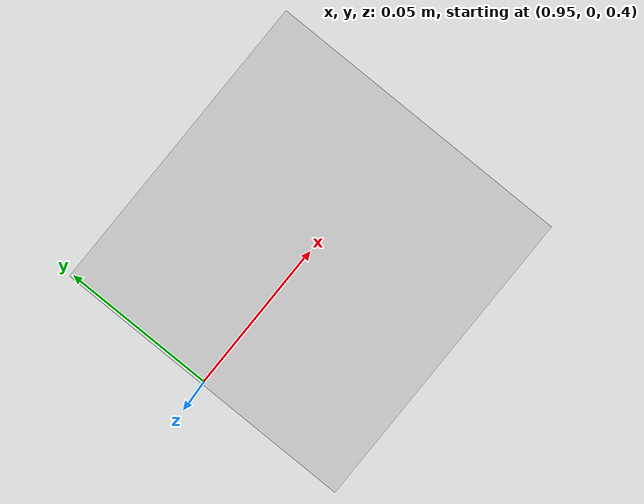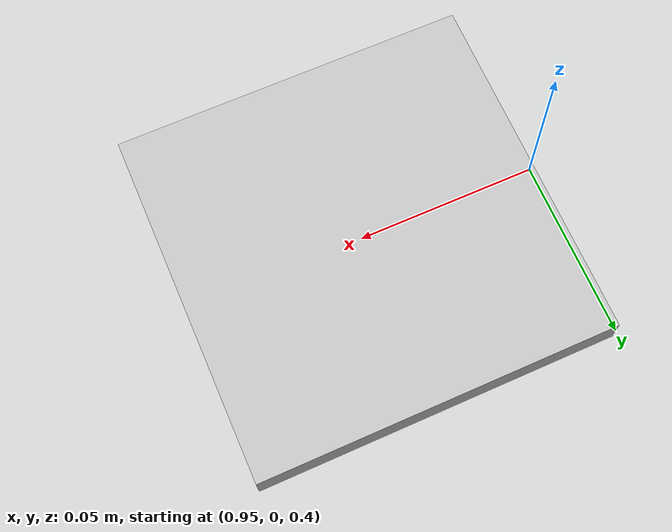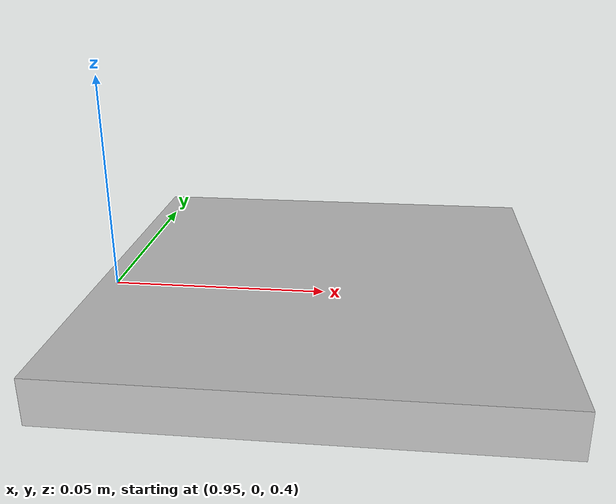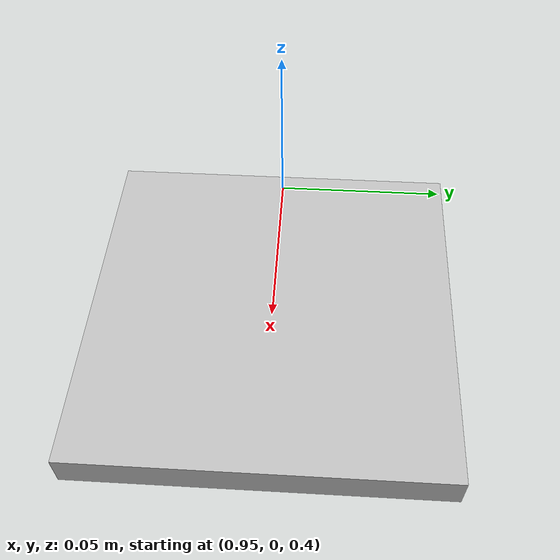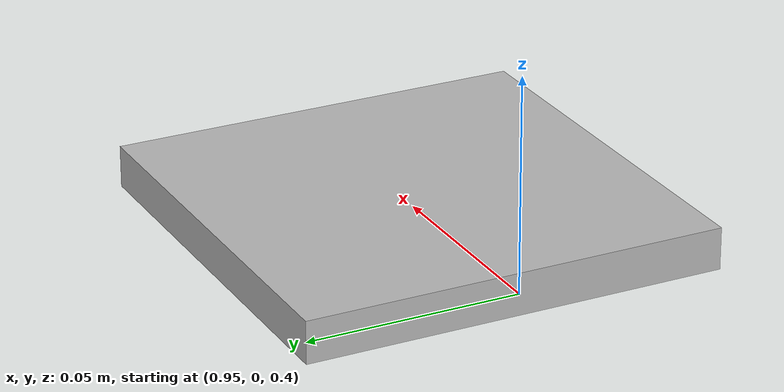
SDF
<sdf version="1.7">
 <world name="default">
  <physics type="ode">
   <ode>
    <solver>
     <type>quick</type>
     <iters>20</iters>
     <sor>1</sor>
     <use_dynamic_moi_rescaling>0</use_dynamic_moi_rescaling>
    </solver>
    <constraints>
     <cfm>0</cfm>
     <erp>0.2</erp>
     <contact_max_correcting_vel>100</contact_max_correcting_vel>
     <contact_surface_layer>0</contact_surface_layer>
    </constraints>
   </ode>
   <real_time_update_rate>1000</real_time_update_rate>
   <max_step_size>0.001</max_step_size>
   <real_time_factor>1</real_time_factor>
  </physics>
  <light name="sun" type="directional">
   <pose>0 0 10 0 -0 0</pose>
   <diffuse>0.8 0.8 0.8 1</diffuse>
   <specular>0.2 0.2 0.2 1</specular>
   <attenuation>
    <range>1000</range>
    <constant>0.9</constant>
    <linear>0.01</linear>
    <quadratic>0.001</quadratic>
   </attenuation>
   <direction>-0.5 0.1 -0.9</direction>
   <spot><inner_angle>0</inner_angle><outer_angle>0</outer_angle><falloff>0</falloff></spot>
  </light>
  <model name="ground_plane">
   <static>1</static>
   <link name="link">
    <collision name="collision">
     <geometry><plane><normal>0 0 1</normal><size>100 100</size></plane></geometry>
     <surface>
      <contact><collide_bitmask>65535</collide_bitmask></contact>
      <friction><ode><mu>100</mu><mu2>50</mu2></ode></friction>
     </surface>
    </collision>
    <visual name="visual">
     <cast_shadows>0</cast_shadows>
     <geometry><plane><normal>0 0 1</normal><size>100 100</size></plane></geometry>
     <material>
      <script><uri>file://media/materials/scripts/gazebo.material</uri><name>Gazebo/Grey</name></script>
     </material>
    </visual>
   </link>
  </model>
  <gravity>0 0 0</gravity>
  <magnetic_field>6e-06 2.3e-05 -4.2e-05</magnetic_field>
  <atmosphere type="adiabatic"/>
  <scene><ambient>0.4 0.4 0.4 1</ambient><background>0.7 0.7 0.7 1</background><shadows>1</shadows></scene>
  <spherical_coordinates>
   <surface_model>EARTH_WGS84</surface_model>
   <latitude_deg>0</latitude_deg>
   <longitude_deg>0</longitude_deg>
   <elevation>0</elevation>
   <heading_deg>0</heading_deg>
  </spherical_coordinates>
  <model name="Apriltag36_11_00000">
   <link name="main">
    <visual name="main_Visual">
     <geometry><box><size>0.1 0.1 0.01</size></box></geometry>
     <material>
      <script>
       <uri>model://Apriltag36_11_00000/materials/scripts</uri>
       <uri>model://Apriltag36_11_00000/materials/textures</uri>
       <name>Apriltag36_11_00000</name>
      </script>
     </material>
    </visual>
   </link>
   <static>1</static>
   <pose>1 0 0.4 0 -0 0</pose>
  </model>
  <shadows>0</shadows>
 </world>
</sdf>
